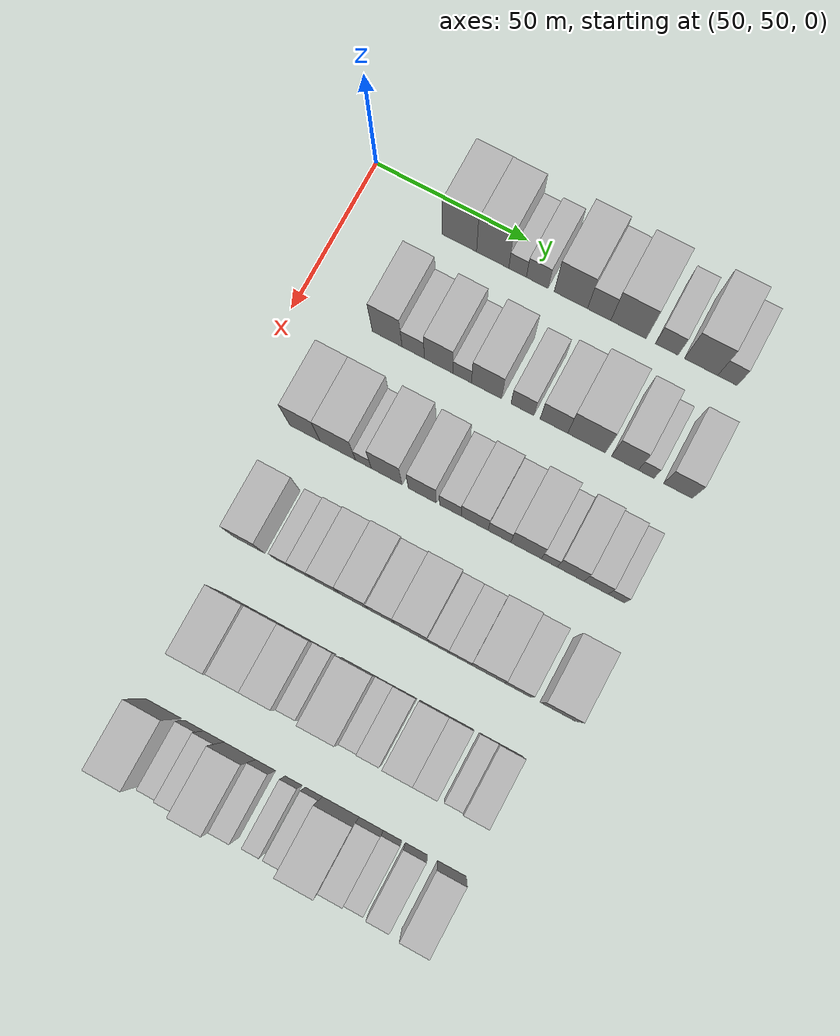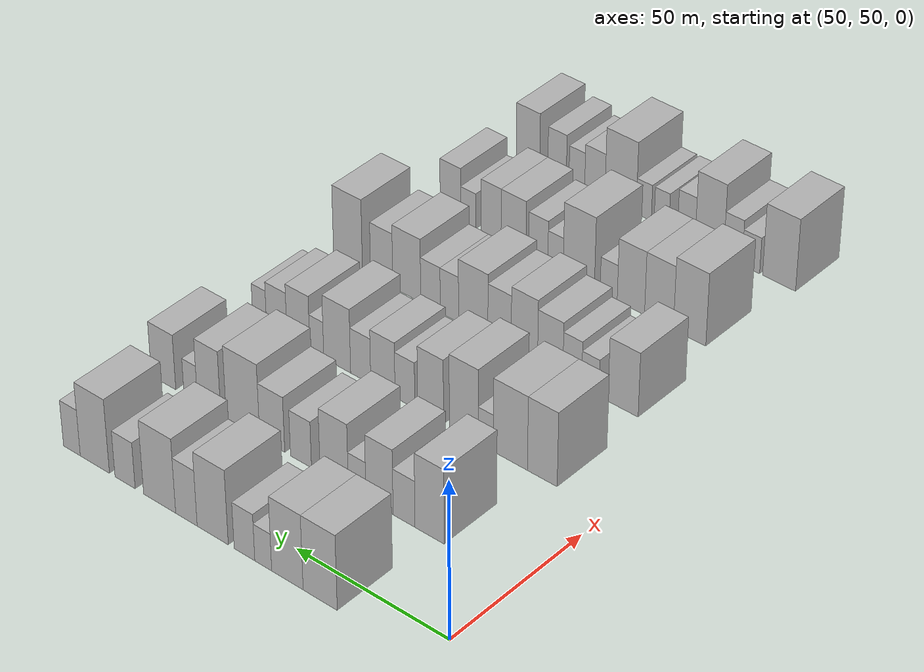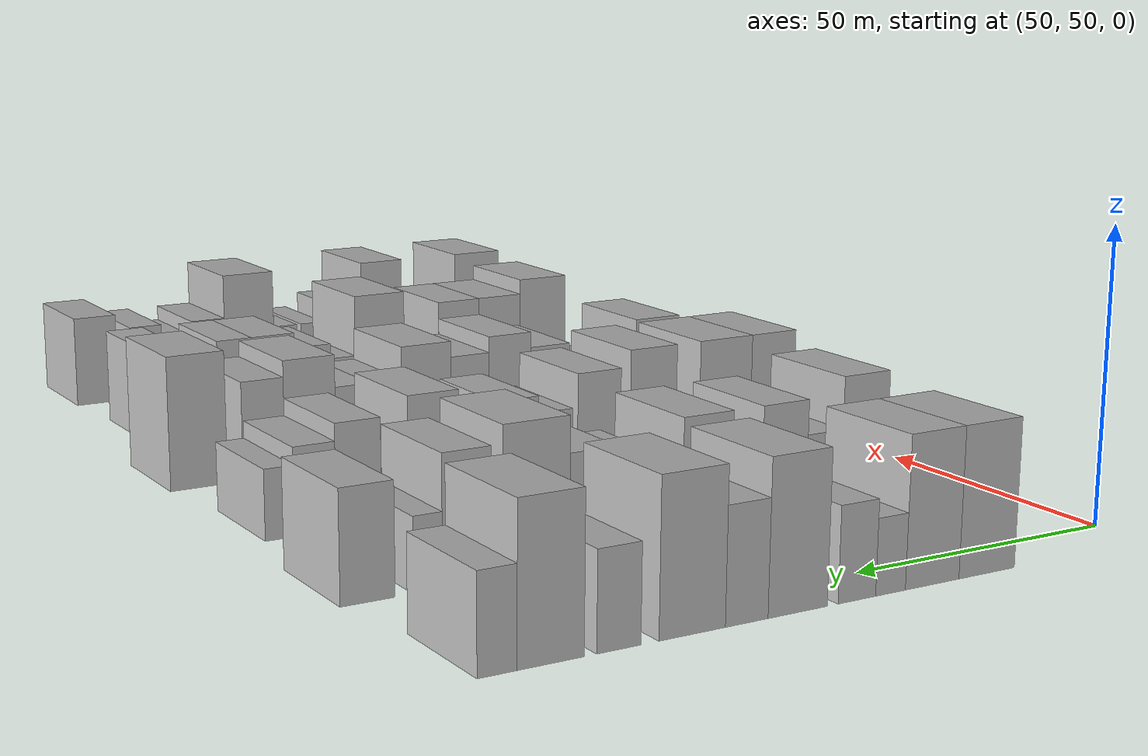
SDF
<sdf version="1.6">
 <world name="default">
  <model name="building_66">
   <static>1</static>
   <pose>50.0000 82.8861 0 0.000000 0.000000 0.000000</pose>
   <link name="link">
    <pose>0 0 12.00 0 0 0</pose>
    <collision name="collision"><geometry><box><size>20.0000 11.2311 24.0000</size></box></geometry></collision>
    <visual name="visual">
     <cast_shadows>0</cast_shadows>
     <geometry><box><size>20.0000 11.2311 24.0000</size></box></geometry>
     <material>
      <script>
       <uri>model://HANNAS_wall/materials/scripts</uri>
       <uri>model://HANNAS_wall/materials/textures</uri>
       <name>vrc/HANNAS_wall</name>
      </script>
     </material>
    </visual>
   </link>
  </model>
  <model name="building_67">
   <static>1</static>
   <pose>50.0000 93.7520 0 0.000000 0.000000 0.000000</pose>
   <link name="link">
    <pose>0 0 12.00 0 0 0</pose>
    <collision name="collision"><geometry><box><size>20.0000 10.5008 24.0000</size></box></geometry></collision>
    <visual name="visual">
     <cast_shadows>0</cast_shadows>
     <geometry><box><size>20.0000 10.5008 24.0000</size></box></geometry>
     <material>
      <script>
       <uri>model://HANNAS_wall/materials/scripts</uri>
       <uri>model://HANNAS_wall/materials/textures</uri>
       <name>vrc/HANNAS_wall</name>
      </script>
     </material>
    </visual>
   </link>
  </model>
  <model name="building_68">
   <static>1</static>
   <pose>50.0000 101.8500 0 0.000000 0.000000 0.000000</pose>
   <link name="link">
    <pose>0 0 6.00 0 0 0</pose>
    <collision name="collision"><geometry><box><size>20.0000 5.6951 12.0000</size></box></geometry></collision>
    <visual name="visual">
     <cast_shadows>0</cast_shadows>
     <geometry><box><size>20.0000 5.6951 12.0000</size></box></geometry>
     <material>
      <script>
       <uri>model://HANNAS_wall/materials/scripts</uri>
       <uri>model://HANNAS_wall/materials/textures</uri>
       <name>vrc/HANNAS_wall</name>
      </script>
     </material>
    </visual>
   </link>
  </model>
  <model name="building_69">
   <static>1</static>
   <pose>50.0000 108.2108 0 0.000000 0.000000 0.000000</pose>
   <link name="link">
    <pose>0 0 7.50 0 0 0</pose>
    <collision name="collision"><geometry><box><size>20.0000 7.0266 15.0000</size></box></geometry></collision>
    <visual name="visual">
     <cast_shadows>0</cast_shadows>
     <geometry><box><size>20.0000 7.0266 15.0000</size></box></geometry>
     <material>
      <script>
       <uri>model://HANNAS_wall/materials/scripts</uri>
       <uri>model://HANNAS_wall/materials/textures</uri>
       <name>vrc/HANNAS_wall</name>
      </script>
     </material>
    </visual>
   </link>
  </model>
  <model name="building_70">
   <static>1</static>
   <pose>50.0000 119.0838 0 0.000000 0.000000 0.000000</pose>
   <link name="link">
    <pose>0 0 12.00 0 0 0</pose>
    <collision name="collision"><geometry><box><size>20.0000 10.7194 24.0000</size></box></geometry></collision>
    <visual name="visual">
     <cast_shadows>0</cast_shadows>
     <geometry><box><size>20.0000 10.7194 24.0000</size></box></geometry>
     <material>
      <script>
       <uri>model://HANNAS_wall/materials/scripts</uri>
       <uri>model://HANNAS_wall/materials/textures</uri>
       <name>vrc/HANNAS_wall</name>
      </script>
     </material>
    </visual>
   </link>
  </model>
  <model name="building_71">
   <static>1</static>
   <pose>50.0000 128.1897 0 0.000000 0.000000 0.000000</pose>
   <link name="link">
    <pose>0 0 9.00 0 0 0</pose>
    <collision name="collision"><geometry><box><size>20.0000 7.4924 18.0000</size></box></geometry></collision>
    <visual name="visual">
     <cast_shadows>0</cast_shadows>
     <geometry><box><size>20.0000 7.4924 18.0000</size></box></geometry>
     <material>
      <script>
       <uri>model://HANNAS_wall/materials/scripts</uri>
       <uri>model://HANNAS_wall/materials/textures</uri>
       <name>vrc/HANNAS_wall</name>
      </script>
     </material>
    </visual>
   </link>
  </model>
  <model name="building_72">
   <static>1</static>
   <pose>50.0000 137.5863 0 0.000000 0.000000 0.000000</pose>
   <link name="link">
    <pose>0 0 12.00 0 0 0</pose>
    <collision name="collision"><geometry><box><size>20.0000 11.3008 24.0000</size></box></geometry></collision>
    <visual name="visual">
     <cast_shadows>0</cast_shadows>
     <geometry><box><size>20.0000 11.3008 24.0000</size></box></geometry>
     <material>
      <script>
       <uri>model://HANNAS_wall/materials/scripts</uri>
       <uri>model://HANNAS_wall/materials/textures</uri>
       <name>vrc/HANNAS_wall</name>
      </script>
     </material>
    </visual>
   </link>
  </model>
  <model name="building_73">
   <static>1</static>
   <pose>50.0000 149.8443 0 0.000000 0.000000 0.000000</pose>
   <link name="link">
    <pose>0 0 7.50 0 0 0</pose>
    <collision name="collision"><geometry><box><size>20.0000 7.2153 15.0000</size></box></geometry></collision>
    <visual name="visual">
     <cast_shadows>0</cast_shadows>
     <geometry><box><size>20.0000 7.2153 15.0000</size></box></geometry>
     <material>
      <script>
       <uri>model://HANNAS_wall/materials/scripts</uri>
       <uri>model://HANNAS_wall/materials/textures</uri>
       <name>vrc/HANNAS_wall</name>
      </script>
     </material>
    </visual>
   </link>
  </model>
  <model name="building_74">
   <static>1</static>
   <pose>50.0000 160.7330 0 0.000000 0.000000 0.000000</pose>
   <link name="link">
    <pose>0 0 12.00 0 0 0</pose>
    <collision name="collision"><geometry><box><size>20.0000 10.5620 24.0000</size></box></geometry></collision>
    <visual name="visual">
     <cast_shadows>0</cast_shadows>
     <geometry><box><size>20.0000 10.5620 24.0000</size></box></geometry>
     <material>
      <script>
       <uri>model://HANNAS_wall/materials/scripts</uri>
       <uri>model://HANNAS_wall/materials/textures</uri>
       <name>vrc/HANNAS_wall</name>
      </script>
     </material>
    </visual>
   </link>
  </model>
  <model name="building_75">
   <static>1</static>
   <pose>50.0000 169.0796 0 0.000000 0.000000 0.000000</pose>
   <link name="link">
    <pose>0 0 7.50 0 0 0</pose>
    <collision name="collision"><geometry><box><size>20.0000 6.1313 15.0000</size></box></geometry></collision>
    <visual name="visual">
     <cast_shadows>0</cast_shadows>
     <geometry><box><size>20.0000 6.1313 15.0000</size></box></geometry>
     <material>
      <script>
       <uri>model://HANNAS_wall/materials/scripts</uri>
       <uri>model://HANNAS_wall/materials/textures</uri>
       <name>vrc/HANNAS_wall</name>
      </script>
     </material>
    </visual>
   </link>
  </model>
  <model name="building_192">
   <static>1</static>
   <pose>85.0000 78.3470 0 0.000000 0.000000 0.000000</pose>
   <link name="link">
    <pose>0 0 12.00 0 0 0</pose>
    <collision name="collision"><geometry><box><size>20.0000 9.6122 24.0000</size></box></geometry></collision>
    <visual name="visual">
     <cast_shadows>0</cast_shadows>
     <geometry><box><size>20.0000 9.6122 24.0000</size></box></geometry>
     <material>
      <script>
       <uri>model://HANNAS_wall/materials/scripts</uri>
       <uri>model://HANNAS_wall/materials/textures</uri>
       <name>vrc/HANNAS_wall</name>
      </script>
     </material>
    </visual>
   </link>
  </model>
  <model name="building_193">
   <static>1</static>
   <pose>85.0000 86.7908 0 0.000000 0.000000 0.000000</pose>
   <link name="link">
    <pose>0 0 7.50 0 0 0</pose>
    <collision name="collision"><geometry><box><size>20.0000 7.2756 15.0000</size></box></geometry></collision>
    <visual name="visual">
     <cast_shadows>0</cast_shadows>
     <geometry><box><size>20.0000 7.2756 15.0000</size></box></geometry>
     <material>
      <script>
       <uri>model://HANNAS_wall/materials/scripts</uri>
       <uri>model://HANNAS_wall/materials/textures</uri>
       <name>vrc/HANNAS_wall</name>
      </script>
     </material>
    </visual>
   </link>
  </model>
  <model name="building_194">
   <static>1</static>
   <pose>85.0000 94.9888 0 0.000000 0.000000 0.000000</pose>
   <link name="link">
    <pose>0 0 10.50 0 0 0</pose>
    <collision name="collision"><geometry><box><size>20.0000 9.1202 21.0000</size></box></geometry></collision>
    <visual name="visual">
     <cast_shadows>0</cast_shadows>
     <geometry><box><size>20.0000 9.1202 21.0000</size></box></geometry>
     <material>
      <script>
       <uri>model://HANNAS_wall/materials/scripts</uri>
       <uri>model://HANNAS_wall/materials/textures</uri>
       <name>vrc/HANNAS_wall</name>
      </script>
     </material>
    </visual>
   </link>
  </model>
  <model name="building_195">
   <static>1</static>
   <pose>85.0000 102.5280 0 0.000000 0.000000 0.000000</pose>
   <link name="link">
    <pose>0 0 6.00 0 0 0</pose>
    <collision name="collision"><geometry><box><size>20.0000 5.9583 12.0000</size></box></geometry></collision>
    <visual name="visual">
     <cast_shadows>0</cast_shadows>
     <geometry><box><size>20.0000 5.9583 12.0000</size></box></geometry>
     <material>
      <script>
       <uri>model://HANNAS_wall/materials/scripts</uri>
       <uri>model://HANNAS_wall/materials/textures</uri>
       <name>vrc/HANNAS_wall</name>
      </script>
     </material>
    </visual>
   </link>
  </model>
  <model name="building_196">
   <static>1</static>
   <pose>85.0000 110.3411 0 0.000000 0.000000 0.000000</pose>
   <link name="link">
    <pose>0 0 10.50 0 0 0</pose>
    <collision name="collision"><geometry><box><size>20.0000 9.6679 21.0000</size></box></geometry></collision>
    <visual name="visual">
     <cast_shadows>0</cast_shadows>
     <geometry><box><size>20.0000 9.6679 21.0000</size></box></geometry>
     <material>
      <script>
       <uri>model://HANNAS_wall/materials/scripts</uri>
       <uri>model://HANNAS_wall/materials/textures</uri>
       <name>vrc/HANNAS_wall</name>
      </script>
     </material>
    </visual>
   </link>
  </model>
  <model name="building_197">
   <static>1</static>
   <pose>85.0000 121.8186 0 0.000000 0.000000 0.000000</pose>
   <link name="link">
    <pose>0 0 7.50 0 0 0</pose>
    <collision name="collision"><geometry><box><size>20.0000 7.2870 15.0000</size></box></geometry></collision>
    <visual name="visual">
     <cast_shadows>0</cast_shadows>
     <geometry><box><size>20.0000 7.2870 15.0000</size></box></geometry>
     <material>
      <script>
       <uri>model://HANNAS_wall/materials/scripts</uri>
       <uri>model://HANNAS_wall/materials/textures</uri>
       <name>vrc/HANNAS_wall</name>
      </script>
     </material>
    </visual>
   </link>
  </model>
  <model name="building_198">
   <static>1</static>
   <pose>85.0000 131.8565 0 0.000000 0.000000 0.000000</pose>
   <link name="link">
    <pose>0 0 9.00 0 0 0</pose>
    <collision name="collision"><geometry><box><size>20.0000 8.7888 18.0000</size></box></geometry></collision>
    <visual name="visual">
     <cast_shadows>0</cast_shadows>
     <geometry><box><size>20.0000 8.7888 18.0000</size></box></geometry>
     <material>
      <script>
       <uri>model://HANNAS_wall/materials/scripts</uri>
       <uri>model://HANNAS_wall/materials/textures</uri>
       <name>vrc/HANNAS_wall</name>
      </script>
     </material>
    </visual>
   </link>
  </model>
  <model name="building_199">
   <static>1</static>
   <pose>85.0000 142.1907 0 0.000000 0.000000 0.000000</pose>
   <link name="link">
    <pose>0 0 12.00 0 0 0</pose>
    <collision name="collision"><geometry><box><size>20.0000 11.8796 24.0000</size></box></geometry></collision>
    <visual name="visual">
     <cast_shadows>0</cast_shadows>
     <geometry><box><size>20.0000 11.8796 24.0000</size></box></geometry>
     <material>
      <script>
       <uri>model://HANNAS_wall/materials/scripts</uri>
       <uri>model://HANNAS_wall/materials/textures</uri>
       <name>vrc/HANNAS_wall</name>
      </script>
     </material>
    </visual>
   </link>
  </model>
  <model name="building_200">
   <static>1</static>
   <pose>85.0000 154.3341 0 0.000000 0.000000 0.000000</pose>
   <link name="link">
    <pose>0 0 10.50 0 0 0</pose>
    <collision name="collision"><geometry><box><size>20.0000 8.4072 21.0000</size></box></geometry></collision>
    <visual name="visual">
     <cast_shadows>0</cast_shadows>
     <geometry><box><size>20.0000 8.4072 21.0000</size></box></geometry>
     <material>
      <script>
       <uri>model://HANNAS_wall/materials/scripts</uri>
       <uri>model://HANNAS_wall/materials/textures</uri>
       <name>vrc/HANNAS_wall</name>
      </script>
     </material>
    </visual>
   </link>
  </model>
  <model name="building_201">
   <static>1</static>
   <pose>85.0000 160.9984 0 0.000000 0.000000 0.000000</pose>
   <link name="link">
    <pose>0 0 6.00 0 0 0</pose>
    <collision name="collision"><geometry><box><size>20.0000 4.9215 12.0000</size></box></geometry></collision>
    <visual name="visual">
     <cast_shadows>0</cast_shadows>
     <geometry><box><size>20.0000 4.9215 12.0000</size></box></geometry>
     <material>
      <script>
       <uri>model://HANNAS_wall/materials/scripts</uri>
       <uri>model://HANNAS_wall/materials/textures</uri>
       <name>vrc/HANNAS_wall</name>
      </script>
     </material>
    </visual>
   </link>
  </model>
  <model name="building_202">
   <static>1</static>
   <pose>85.0000 170.9503 0 0.000000 0.000000 0.000000</pose>
   <link name="link">
    <pose>0 0 9.00 0 0 0</pose>
    <collision name="collision"><geometry><box><size>20.0000 8.9822 18.0000</size></box></geometry></collision>
    <visual name="visual">
     <cast_shadows>0</cast_shadows>
     <geometry><box><size>20.0000 8.9822 18.0000</size></box></geometry>
     <material>
      <script>
       <uri>model://HANNAS_wall/materials/scripts</uri>
       <uri>model://HANNAS_wall/materials/textures</uri>
       <name>vrc/HANNAS_wall</name>
      </script>
     </material>
    </visual>
   </link>
  </model>
  <model name="building_320">
   <static>1</static>
   <pose>120.0000 71.1580 0 0.000000 0.000000 0.000000</pose>
   <link name="link">
    <pose>0 0 12.00 0 0 0</pose>
    <collision name="collision"><geometry><box><size>20.0000 9.8005 24.0000</size></box></geometry></collision>
    <visual name="visual">
     <cast_shadows>0</cast_shadows>
     <geometry><box><size>20.0000 9.8005 24.0000</size></box></geometry>
     <material>
      <script>
       <uri>model://HANNAS_wall/materials/scripts</uri>
       <uri>model://HANNAS_wall/materials/textures</uri>
       <name>vrc/HANNAS_wall</name>
      </script>
     </material>
    </visual>
   </link>
  </model>
  <model name="building_321">
   <static>1</static>
   <pose>120.0000 81.7334 0 0.000000 0.000000 0.000000</pose>
   <link name="link">
    <pose>0 0 12.00 0 0 0</pose>
    <collision name="collision"><geometry><box><size>20.0000 11.3503 24.0000</size></box></geometry></collision>
    <visual name="visual">
     <cast_shadows>0</cast_shadows>
     <geometry><box><size>20.0000 11.3503 24.0000</size></box></geometry>
     <material>
      <script>
       <uri>model://HANNAS_wall/materials/scripts</uri>
       <uri>model://HANNAS_wall/materials/textures</uri>
       <name>vrc/HANNAS_wall</name>
      </script>
     </material>
    </visual>
   </link>
  </model>
  <model name="building_322">
   <static>1</static>
   <pose>120.0000 89.9435 0 0.000000 0.000000 0.000000</pose>
   <link name="link">
    <pose>0 0 6.00 0 0 0</pose>
    <collision name="collision"><geometry><box><size>20.0000 5.0697 12.0000</size></box></geometry></collision>
    <visual name="visual">
     <cast_shadows>0</cast_shadows>
     <geometry><box><size>20.0000 5.0697 12.0000</size></box></geometry>
     <material>
      <script>
       <uri>model://HANNAS_wall/materials/scripts</uri>
       <uri>model://HANNAS_wall/materials/textures</uri>
       <name>vrc/HANNAS_wall</name>
      </script>
     </material>
    </visual>
   </link>
  </model>
  <model name="building_323">
   <static>1</static>
   <pose>120.0000 97.3621 0 0.000000 0.000000 0.000000</pose>
   <link name="link">
    <pose>0 0 12.00 0 0 0</pose>
    <collision name="collision"><geometry><box><size>20.0000 9.7675 24.0000</size></box></geometry></collision>
    <visual name="visual">
     <cast_shadows>0</cast_shadows>
     <geometry><box><size>20.0000 9.7675 24.0000</size></box></geometry>
     <material>
      <script>
       <uri>model://HANNAS_wall/materials/scripts</uri>
       <uri>model://HANNAS_wall/materials/textures</uri>
       <name>vrc/HANNAS_wall</name>
      </script>
     </material>
    </visual>
   </link>
  </model>
  <model name="building_324">
   <static>1</static>
   <pose>120.0000 108.6816 0 0.000000 0.000000 0.000000</pose>
   <link name="link">
    <pose>0 0 10.50 0 0 0</pose>
    <collision name="collision"><geometry><box><size>20.0000 8.8715 21.0000</size></box></geometry></collision>
    <visual name="visual">
     <cast_shadows>0</cast_shadows>
     <geometry><box><size>20.0000 8.8715 21.0000</size></box></geometry>
     <material>
      <script>
       <uri>model://HANNAS_wall/materials/scripts</uri>
       <uri>model://HANNAS_wall/materials/textures</uri>
       <name>vrc/HANNAS_wall</name>
      </script>
     </material>
    </visual>
   </link>
  </model>
  <model name="building_325">
   <static>1</static>
   <pose>120.0000 117.5374 0 0.000000 0.000000 0.000000</pose>
   <link name="link">
    <pose>0 0 7.50 0 0 0</pose>
    <collision name="collision"><geometry><box><size>20.0000 6.8402 15.0000</size></box></geometry></collision>
    <visual name="visual">
     <cast_shadows>0</cast_shadows>
     <geometry><box><size>20.0000 6.8402 15.0000</size></box></geometry>
     <material>
      <script>
       <uri>model://HANNAS_wall/materials/scripts</uri>
       <uri>model://HANNAS_wall/materials/textures</uri>
       <name>vrc/HANNAS_wall</name>
      </script>
     </material>
    </visual>
   </link>
  </model>
  <model name="building_326">
   <static>1</static>
   <pose>120.0000 125.2174 0 0.000000 0.000000 0.000000</pose>
   <link name="link">
    <pose>0 0 9.00 0 0 0</pose>
    <collision name="collision"><geometry><box><size>20.0000 8.5199 18.0000</size></box></geometry></collision>
    <visual name="visual">
     <cast_shadows>0</cast_shadows>
     <geometry><box><size>20.0000 8.5199 18.0000</size></box></geometry>
     <material>
      <script>
       <uri>model://HANNAS_wall/materials/scripts</uri>
       <uri>model://HANNAS_wall/materials/textures</uri>
       <name>vrc/HANNAS_wall</name>
      </script>
     </material>
    </visual>
   </link>
  </model>
  <model name="building_327">
   <static>1</static>
   <pose>120.0000 133.0265 0 0.000000 0.000000 0.000000</pose>
   <link name="link">
    <pose>0 0 7.50 0 0 0</pose>
    <collision name="collision"><geometry><box><size>20.0000 7.0983 15.0000</size></box></geometry></collision>
    <visual name="visual">
     <cast_shadows>0</cast_shadows>
     <geometry><box><size>20.0000 7.0983 15.0000</size></box></geometry>
     <material>
      <script>
       <uri>model://HANNAS_wall/materials/scripts</uri>
       <uri>model://HANNAS_wall/materials/textures</uri>
       <name>vrc/HANNAS_wall</name>
      </script>
     </material>
    </visual>
   </link>
  </model>
  <model name="building_328">
   <static>1</static>
   <pose>120.0000 141.3743 0 0.000000 0.000000 0.000000</pose>
   <link name="link">
    <pose>0 0 10.50 0 0 0</pose>
    <collision name="collision"><geometry><box><size>20.0000 9.5973 21.0000</size></box></geometry></collision>
    <visual name="visual">
     <cast_shadows>0</cast_shadows>
     <geometry><box><size>20.0000 9.5973 21.0000</size></box></geometry>
     <material>
      <script>
       <uri>model://HANNAS_wall/materials/scripts</uri>
       <uri>model://HANNAS_wall/materials/textures</uri>
       <name>vrc/HANNAS_wall</name>
      </script>
     </material>
    </visual>
   </link>
  </model>
  <model name="building_329">
   <static>1</static>
   <pose>120.0000 148.6770 0 0.000000 0.000000 0.000000</pose>
   <link name="link">
    <pose>0 0 6.00 0 0 0</pose>
    <collision name="collision"><geometry><box><size>20.0000 5.0082 12.0000</size></box></geometry></collision>
    <visual name="visual">
     <cast_shadows>0</cast_shadows>
     <geometry><box><size>20.0000 5.0082 12.0000</size></box></geometry>
     <material>
      <script>
       <uri>model://HANNAS_wall/materials/scripts</uri>
       <uri>model://HANNAS_wall/materials/textures</uri>
       <name>vrc/HANNAS_wall</name>
      </script>
     </material>
    </visual>
   </link>
  </model>
  <model name="building_330">
   <static>1</static>
   <pose>120.0000 155.3260 0 0.000000 0.000000 0.000000</pose>
   <link name="link">
    <pose>0 0 9.00 0 0 0</pose>
    <collision name="collision"><geometry><box><size>20.0000 8.2897 18.0000</size></box></geometry></collision>
    <visual name="visual">
     <cast_shadows>0</cast_shadows>
     <geometry><box><size>20.0000 8.2897 18.0000</size></box></geometry>
     <material>
      <script>
       <uri>model://HANNAS_wall/materials/scripts</uri>
       <uri>model://HANNAS_wall/materials/textures</uri>
       <name>vrc/HANNAS_wall</name>
      </script>
     </material>
    </visual>
   </link>
  </model>
  <model name="building_331">
   <static>1</static>
   <pose>120.0000 163.2194 0 0.000000 0.000000 0.000000</pose>
   <link name="link">
    <pose>0 0 7.50 0 0 0</pose>
    <collision name="collision"><geometry><box><size>20.0000 7.4971 15.0000</size></box></geometry></collision>
    <visual name="visual">
     <cast_shadows>0</cast_shadows>
     <geometry><box><size>20.0000 7.4971 15.0000</size></box></geometry>
     <material>
      <script>
       <uri>model://HANNAS_wall/materials/scripts</uri>
       <uri>model://HANNAS_wall/materials/textures</uri>
       <name>vrc/HANNAS_wall</name>
      </script>
     </material>
    </visual>
   </link>
  </model>
  <model name="building_332">
   <static>1</static>
   <pose>120.0000 169.5072 0 0.000000 0.000000 0.000000</pose>
   <link name="link">
    <pose>0 0 6.00 0 0 0</pose>
    <collision name="collision"><geometry><box><size>20.0000 5.0786 12.0000</size></box></geometry></collision>
    <visual name="visual">
     <cast_shadows>0</cast_shadows>
     <geometry><box><size>20.0000 5.0786 12.0000</size></box></geometry>
     <material>
      <script>
       <uri>model://HANNAS_wall/materials/scripts</uri>
       <uri>model://HANNAS_wall/materials/textures</uri>
       <name>vrc/HANNAS_wall</name>
      </script>
     </material>
    </visual>
   </link>
  </model>
  <model name="building_441">
   <static>1</static>
   <pose>155.0000 72.9987 0 0.000000 0.000000 0.000000</pose>
   <link name="link">
    <pose>0 0 10.50 0 0 0</pose>
    <collision name="collision"><geometry><box><size>20.0000 9.9879 21.0000</size></box></geometry></collision>
    <visual name="visual">
     <cast_shadows>0</cast_shadows>
     <geometry><box><size>20.0000 9.9879 21.0000</size></box></geometry>
     <material>
      <script>
       <uri>model://HANNAS_wall/materials/scripts</uri>
       <uri>model://HANNAS_wall/materials/textures</uri>
       <name>vrc/HANNAS_wall</name>
      </script>
     </material>
    </visual>
   </link>
  </model>
  <model name="building_442">
   <static>1</static>
   <pose>155.0000 83.9254 0 0.000000 0.000000 0.000000</pose>
   <link name="link">
    <pose>0 0 6.00 0 0 0</pose>
    <collision name="collision"><geometry><box><size>20.0000 5.8654 12.0000</size></box></geometry></collision>
    <visual name="visual">
     <cast_shadows>0</cast_shadows>
     <geometry><box><size>20.0000 5.8654 12.0000</size></box></geometry>
     <material>
      <script>
       <uri>model://HANNAS_wall/materials/scripts</uri>
       <uri>model://HANNAS_wall/materials/textures</uri>
       <name>vrc/HANNAS_wall</name>
      </script>
     </material>
    </visual>
   </link>
  </model>
  <model name="building_443">
   <static>1</static>
   <pose>155.0000 90.0414 0 0.000000 0.000000 0.000000</pose>
   <link name="link">
    <pose>0 0 7.50 0 0 0</pose>
    <collision name="collision"><geometry><box><size>20.0000 6.3666 15.0000</size></box></geometry></collision>
    <visual name="visual">
     <cast_shadows>0</cast_shadows>
     <geometry><box><size>20.0000 6.3666 15.0000</size></box></geometry>
     <material>
      <script>
       <uri>model://HANNAS_wall/materials/scripts</uri>
       <uri>model://HANNAS_wall/materials/textures</uri>
       <name>vrc/HANNAS_wall</name>
      </script>
     </material>
    </visual>
   </link>
  </model>
  <model name="building_444">
   <static>1</static>
   <pose>155.0000 97.5433 0 0.000000 0.000000 0.000000</pose>
   <link name="link">
    <pose>0 0 9.00 0 0 0</pose>
    <collision name="collision"><geometry><box><size>20.0000 8.6372 18.0000</size></box></geometry></collision>
    <visual name="visual">
     <cast_shadows>0</cast_shadows>
     <geometry><box><size>20.0000 8.6372 18.0000</size></box></geometry>
     <material>
      <script>
       <uri>model://HANNAS_wall/materials/scripts</uri>
       <uri>model://HANNAS_wall/materials/textures</uri>
       <name>vrc/HANNAS_wall</name>
      </script>
     </material>
    </visual>
   </link>
  </model>
  <model name="building_445">
   <static>1</static>
   <pose>155.0000 106.4123 0 0.000000 0.000000 0.000000</pose>
   <link name="link">
    <pose>0 0 10.50 0 0 0</pose>
    <collision name="collision"><geometry><box><size>20.0000 9.1010 21.0000</size></box></geometry></collision>
    <visual name="visual">
     <cast_shadows>0</cast_shadows>
     <geometry><box><size>20.0000 9.1010 21.0000</size></box></geometry>
     <material>
      <script>
       <uri>model://HANNAS_wall/materials/scripts</uri>
       <uri>model://HANNAS_wall/materials/textures</uri>
       <name>vrc/HANNAS_wall</name>
      </script>
     </material>
    </visual>
   </link>
  </model>
  <model name="building_446">
   <static>1</static>
   <pose>155.0000 115.0220 0 0.000000 0.000000 0.000000</pose>
   <link name="link">
    <pose>0 0 9.00 0 0 0</pose>
    <collision name="collision"><geometry><box><size>20.0000 8.1183 18.0000</size></box></geometry></collision>
    <visual name="visual">
     <cast_shadows>0</cast_shadows>
     <geometry><box><size>20.0000 8.1183 18.0000</size></box></geometry>
     <material>
      <script>
       <uri>model://HANNAS_wall/materials/scripts</uri>
       <uri>model://HANNAS_wall/materials/textures</uri>
       <name>vrc/HANNAS_wall</name>
      </script>
     </material>
    </visual>
   </link>
  </model>
  <model name="building_447">
   <static>1</static>
   <pose>155.0000 124.2455 0 0.000000 0.000000 0.000000</pose>
   <link name="link">
    <pose>0 0 10.50 0 0 0</pose>
    <collision name="collision"><geometry><box><size>20.0000 10.3288 21.0000</size></box></geometry></collision>
    <visual name="visual">
     <cast_shadows>0</cast_shadows>
     <geometry><box><size>20.0000 10.3288 21.0000</size></box></geometry>
     <material>
      <script>
       <uri>model://HANNAS_wall/materials/scripts</uri>
       <uri>model://HANNAS_wall/materials/textures</uri>
       <name>vrc/HANNAS_wall</name>
      </script>
     </material>
    </visual>
   </link>
  </model>
  <model name="building_448">
   <static>1</static>
   <pose>155.0000 132.6566 0 0.000000 0.000000 0.000000</pose>
   <link name="link">
    <pose>0 0 7.50 0 0 0</pose>
    <collision name="collision"><geometry><box><size>20.0000 6.4934 15.0000</size></box></geometry></collision>
    <visual name="visual">
     <cast_shadows>0</cast_shadows>
     <geometry><box><size>20.0000 6.4934 15.0000</size></box></geometry>
     <material>
      <script>
       <uri>model://HANNAS_wall/materials/scripts</uri>
       <uri>model://HANNAS_wall/materials/textures</uri>
       <name>vrc/HANNAS_wall</name>
      </script>
     </material>
    </visual>
   </link>
  </model>
  <model name="building_449">
   <static>1</static>
   <pose>155.0000 139.3951 0 0.000000 0.000000 0.000000</pose>
   <link name="link">
    <pose>0 0 7.50 0 0 0</pose>
    <collision name="collision"><geometry><box><size>20.0000 6.9836 15.0000</size></box></geometry></collision>
    <visual name="visual">
     <cast_shadows>0</cast_shadows>
     <geometry><box><size>20.0000 6.9836 15.0000</size></box></geometry>
     <material>
      <script>
       <uri>model://HANNAS_wall/materials/scripts</uri>
       <uri>model://HANNAS_wall/materials/textures</uri>
       <name>vrc/HANNAS_wall</name>
      </script>
     </material>
    </visual>
   </link>
  </model>
  <model name="building_450">
   <static>1</static>
   <pose>155.0000 147.9284 0 0.000000 0.000000 0.000000</pose>
   <link name="link">
    <pose>0 0 10.50 0 0 0</pose>
    <collision name="collision"><geometry><box><size>20.0000 10.0830 21.0000</size></box></geometry></collision>
    <visual name="visual">
     <cast_shadows>0</cast_shadows>
     <geometry><box><size>20.0000 10.0830 21.0000</size></box></geometry>
     <material>
      <script>
       <uri>model://HANNAS_wall/materials/scripts</uri>
       <uri>model://HANNAS_wall/materials/textures</uri>
       <name>vrc/HANNAS_wall</name>
      </script>
     </material>
    </visual>
   </link>
  </model>
  <model name="building_451">
   <static>1</static>
   <pose>155.0000 157.0211 0 0.000000 0.000000 0.000000</pose>
   <link name="link">
    <pose>0 0 9.00 0 0 0</pose>
    <collision name="collision"><geometry><box><size>20.0000 8.1024 18.0000</size></box></geometry></collision>
    <visual name="visual">
     <cast_shadows>0</cast_shadows>
     <geometry><box><size>20.0000 8.1024 18.0000</size></box></geometry>
     <material>
      <script>
       <uri>model://HANNAS_wall/materials/scripts</uri>
       <uri>model://HANNAS_wall/materials/textures</uri>
       <name>vrc/HANNAS_wall</name>
      </script>
     </material>
    </visual>
   </link>
  </model>
  <model name="building_452">
   <static>1</static>
   <pose>155.0000 169.3982 0 0.000000 0.000000 0.000000</pose>
   <link name="link">
    <pose>0 0 12.00 0 0 0</pose>
    <collision name="collision"><geometry><box><size>20.0000 10.6517 24.0000</size></box></geometry></collision>
    <visual name="visual">
     <cast_shadows>0</cast_shadows>
     <geometry><box><size>20.0000 10.6517 24.0000</size></box></geometry>
     <material>
      <script>
       <uri>model://HANNAS_wall/materials/scripts</uri>
       <uri>model://HANNAS_wall/materials/textures</uri>
       <name>vrc/HANNAS_wall</name>
      </script>
     </material>
    </visual>
   </link>
  </model>
  <model name="building_572">
   <static>1</static>
   <pose>190.0000 78.3213 0 0.000000 0.000000 0.000000</pose>
   <link name="link">
    <pose>0 0 12.00 0 0 0</pose>
    <collision name="collision"><geometry><box><size>20.0000 10.9064 24.0000</size></box></geometry></collision>
    <visual name="visual">
     <cast_shadows>0</cast_shadows>
     <geometry><box><size>20.0000 10.9064 24.0000</size></box></geometry>
     <material>
      <script>
       <uri>model://HANNAS_wall/materials/scripts</uri>
       <uri>model://HANNAS_wall/materials/textures</uri>
       <name>vrc/HANNAS_wall</name>
      </script>
     </material>
    </visual>
   </link>
  </model>
  <model name="building_573">
   <static>1</static>
   <pose>190.0000 88.6854 0 0.000000 0.000000 0.000000</pose>
   <link name="link">
    <pose>0 0 10.50 0 0 0</pose>
    <collision name="collision"><geometry><box><size>20.0000 9.8218 21.0000</size></box></geometry></collision>
    <visual name="visual">
     <cast_shadows>0</cast_shadows>
     <geometry><box><size>20.0000 9.8218 21.0000</size></box></geometry>
     <material>
      <script>
       <uri>model://HANNAS_wall/materials/scripts</uri>
       <uri>model://HANNAS_wall/materials/textures</uri>
       <name>vrc/HANNAS_wall</name>
      </script>
     </material>
    </visual>
   </link>
  </model>
  <model name="building_574">
   <static>1</static>
   <pose>190.0000 98.2997 0 0.000000 0.000000 0.000000</pose>
   <link name="link">
    <pose>0 0 10.50 0 0 0</pose>
    <collision name="collision"><geometry><box><size>20.0000 9.4067 21.0000</size></box></geometry></collision>
    <visual name="visual">
     <cast_shadows>0</cast_shadows>
     <geometry><box><size>20.0000 9.4067 21.0000</size></box></geometry>
     <material>
      <script>
       <uri>model://HANNAS_wall/materials/scripts</uri>
       <uri>model://HANNAS_wall/materials/textures</uri>
       <name>vrc/HANNAS_wall</name>
      </script>
     </material>
    </visual>
   </link>
  </model>
  <model name="building_575">
   <static>1</static>
   <pose>190.0000 105.9650 0 0.000000 0.000000 0.000000</pose>
   <link name="link">
    <pose>0 0 6.00 0 0 0</pose>
    <collision name="collision"><geometry><box><size>20.0000 5.9239 12.0000</size></box></geometry></collision>
    <visual name="visual">
     <cast_shadows>0</cast_shadows>
     <geometry><box><size>20.0000 5.9239 12.0000</size></box></geometry>
     <material>
      <script>
       <uri>model://HANNAS_wall/materials/scripts</uri>
       <uri>model://HANNAS_wall/materials/textures</uri>
       <name>vrc/HANNAS_wall</name>
      </script>
     </material>
    </visual>
   </link>
  </model>
  <model name="building_576">
   <static>1</static>
   <pose>190.0000 116.4180 0 0.000000 0.000000 0.000000</pose>
   <link name="link">
    <pose>0 0 12.00 0 0 0</pose>
    <collision name="collision"><geometry><box><size>20.0000 10.9820 24.0000</size></box></geometry></collision>
    <visual name="visual">
     <cast_shadows>0</cast_shadows>
     <geometry><box><size>20.0000 10.9820 24.0000</size></box></geometry>
     <material>
      <script>
       <uri>model://HANNAS_wall/materials/scripts</uri>
       <uri>model://HANNAS_wall/materials/textures</uri>
       <name>vrc/HANNAS_wall</name>
      </script>
     </material>
    </visual>
   </link>
  </model>
  <model name="building_577">
   <static>1</static>
   <pose>190.0000 124.6281 0 0.000000 0.000000 0.000000</pose>
   <link name="link">
    <pose>0 0 6.00 0 0 0</pose>
    <collision name="collision"><geometry><box><size>20.0000 5.4383 12.0000</size></box></geometry></collision>
    <visual name="visual">
     <cast_shadows>0</cast_shadows>
     <geometry><box><size>20.0000 5.4383 12.0000</size></box></geometry>
     <material>
      <script>
       <uri>model://HANNAS_wall/materials/scripts</uri>
       <uri>model://HANNAS_wall/materials/textures</uri>
       <name>vrc/HANNAS_wall</name>
      </script>
     </material>
    </visual>
   </link>
  </model>
  <model name="building_578">
   <static>1</static>
   <pose>190.0000 130.7560 0 0.000000 0.000000 0.000000</pose>
   <link name="link">
    <pose>0 0 7.50 0 0 0</pose>
    <collision name="collision"><geometry><box><size>20.0000 6.8175 15.0000</size></box></geometry></collision>
    <visual name="visual">
     <cast_shadows>0</cast_shadows>
     <geometry><box><size>20.0000 6.8175 15.0000</size></box></geometry>
     <material>
      <script>
       <uri>model://HANNAS_wall/materials/scripts</uri>
       <uri>model://HANNAS_wall/materials/textures</uri>
       <name>vrc/HANNAS_wall</name>
      </script>
     </material>
    </visual>
   </link>
  </model>
  <model name="building_579">
   <static>1</static>
   <pose>190.0000 139.6504 0 0.000000 0.000000 0.000000</pose>
   <link name="link">
    <pose>0 0 9.00 0 0 0</pose>
    <collision name="collision"><geometry><box><size>20.0000 8.9713 18.0000</size></box></geometry></collision>
    <visual name="visual">
     <cast_shadows>0</cast_shadows>
     <geometry><box><size>20.0000 8.9713 18.0000</size></box></geometry>
     <material>
      <script>
       <uri>model://HANNAS_wall/materials/scripts</uri>
       <uri>model://HANNAS_wall/materials/textures</uri>
       <name>vrc/HANNAS_wall</name>
      </script>
     </material>
    </visual>
   </link>
  </model>
  <model name="building_580">
   <static>1</static>
   <pose>190.0000 147.7383 0 0.000000 0.000000 0.000000</pose>
   <link name="link">
    <pose>0 0 9.00 0 0 0</pose>
    <collision name="collision"><geometry><box><size>20.0000 7.2046 18.0000</size></box></geometry></collision>
    <visual name="visual">
     <cast_shadows>0</cast_shadows>
     <geometry><box><size>20.0000 7.2046 18.0000</size></box></geometry>
     <material>
      <script>
       <uri>model://HANNAS_wall/materials/scripts</uri>
       <uri>model://HANNAS_wall/materials/textures</uri>
       <name>vrc/HANNAS_wall</name>
      </script>
     </material>
    </visual>
   </link>
  </model>
  <model name="building_581">
   <static>1</static>
   <pose>190.0000 156.1290 0 0.000000 0.000000 0.000000</pose>
   <link name="link">
    <pose>0 0 6.00 0 0 0</pose>
    <collision name="collision"><geometry><box><size>20.0000 5.5768 12.0000</size></box></geometry></collision>
    <visual name="visual">
     <cast_shadows>0</cast_shadows>
     <geometry><box><size>20.0000 5.5768 12.0000</size></box></geometry>
     <material>
      <script>
       <uri>model://HANNAS_wall/materials/scripts</uri>
       <uri>model://HANNAS_wall/materials/textures</uri>
       <name>vrc/HANNAS_wall</name>
      </script>
     </material>
    </visual>
   </link>
  </model>
  <model name="building_582">
   <static>1</static>
   <pose>190.0000 162.6758 0 0.000000 0.000000 0.000000</pose>
   <link name="link">
    <pose>0 0 9.00 0 0 0</pose>
    <collision name="collision"><geometry><box><size>20.0000 7.5168 18.0000</size></box></geometry></collision>
    <visual name="visual">
     <cast_shadows>0</cast_shadows>
     <geometry><box><size>20.0000 7.5168 18.0000</size></box></geometry>
     <material>
      <script>
       <uri>model://HANNAS_wall/materials/scripts</uri>
       <uri>model://HANNAS_wall/materials/textures</uri>
       <name>vrc/HANNAS_wall</name>
      </script>
     </material>
    </visual>
   </link>
  </model>
  <model name="building_702">
   <static>1</static>
   <pose>225.0000 74.6856 0 0.000000 0.000000 0.000000</pose>
   <link name="link">
    <pose>0 0 12.00 0 0 0</pose>
    <collision name="collision"><geometry><box><size>20.0000 11.1570 24.0000</size></box></geometry></collision>
    <visual name="visual">
     <cast_shadows>0</cast_shadows>
     <geometry><box><size>20.0000 11.1570 24.0000</size></box></geometry>
     <material>
      <script>
       <uri>model://HANNAS_wall/materials/scripts</uri>
       <uri>model://HANNAS_wall/materials/textures</uri>
       <name>vrc/HANNAS_wall</name>
      </script>
     </material>
    </visual>
   </link>
  </model>
  <model name="building_703">
   <static>1</static>
   <pose>225.0000 84.2598 0 0.000000 0.000000 0.000000</pose>
   <link name="link">
    <pose>0 0 6.00 0 0 0</pose>
    <collision name="collision"><geometry><box><size>20.0000 5.9914 12.0000</size></box></geometry></collision>
    <visual name="visual">
     <cast_shadows>0</cast_shadows>
     <geometry><box><size>20.0000 5.9914 12.0000</size></box></geometry>
     <material>
      <script>
       <uri>model://HANNAS_wall/materials/scripts</uri>
       <uri>model://HANNAS_wall/materials/textures</uri>
       <name>vrc/HANNAS_wall</name>
      </script>
     </material>
    </visual>
   </link>
  </model>
  <model name="building_704">
   <static>1</static>
   <pose>225.0000 90.4231 0 0.000000 0.000000 0.000000</pose>
   <link name="link">
    <pose>0 0 7.50 0 0 0</pose>
    <collision name="collision"><geometry><box><size>20.0000 6.3352 15.0000</size></box></geometry></collision>
    <visual name="visual">
     <cast_shadows>0</cast_shadows>
     <geometry><box><size>20.0000 6.3352 15.0000</size></box></geometry>
     <material>
      <script>
       <uri>model://HANNAS_wall/materials/scripts</uri>
       <uri>model://HANNAS_wall/materials/textures</uri>
       <name>vrc/HANNAS_wall</name>
      </script>
     </material>
    </visual>
   </link>
  </model>
  <model name="building_705">
   <static>1</static>
   <pose>225.0000 98.5329 0 0.000000 0.000000 0.000000</pose>
   <link name="link">
    <pose>0 0 12.00 0 0 0</pose>
    <collision name="collision"><geometry><box><size>20.0000 9.8845 24.0000</size></box></geometry></collision>
    <visual name="visual">
     <cast_shadows>0</cast_shadows>
     <geometry><box><size>20.0000 9.8845 24.0000</size></box></geometry>
     <material>
      <script>
       <uri>model://HANNAS_wall/materials/scripts</uri>
       <uri>model://HANNAS_wall/materials/textures</uri>
       <name>vrc/HANNAS_wall</name>
      </script>
     </material>
    </visual>
   </link>
  </model>
  <model name="building_706">
   <static>1</static>
   <pose>225.0000 106.5747 0 0.000000 0.000000 0.000000</pose>
   <link name="link">
    <pose>0 0 7.50 0 0 0</pose>
    <collision name="collision"><geometry><box><size>20.0000 6.1989 15.0000</size></box></geometry></collision>
    <visual name="visual">
     <cast_shadows>0</cast_shadows>
     <geometry><box><size>20.0000 6.1989 15.0000</size></box></geometry>
     <material>
      <script>
       <uri>model://HANNAS_wall/materials/scripts</uri>
       <uri>model://HANNAS_wall/materials/textures</uri>
       <name>vrc/HANNAS_wall</name>
      </script>
     </material>
    </visual>
   </link>
  </model>
  <model name="building_707">
   <static>1</static>
   <pose>225.0000 115.2795 0 0.000000 0.000000 0.000000</pose>
   <link name="link">
    <pose>0 0 6.00 0 0 0</pose>
    <collision name="collision"><geometry><box><size>20.0000 5.2108 12.0000</size></box></geometry></collision>
    <visual name="visual">
     <cast_shadows>0</cast_shadows>
     <geometry><box><size>20.0000 5.2108 12.0000</size></box></geometry>
     <material>
      <script>
       <uri>model://HANNAS_wall/materials/scripts</uri>
       <uri>model://HANNAS_wall/materials/textures</uri>
       <name>vrc/HANNAS_wall</name>
      </script>
     </material>
    </visual>
   </link>
  </model>
  <model name="building_708">
   <static>1</static>
   <pose>225.0000 121.5792 0 0.000000 0.000000 0.000000</pose>
   <link name="link">
    <pose>0 0 6.00 0 0 0</pose>
    <collision name="collision"><geometry><box><size>20.0000 5.3885 12.0000</size></box></geometry></collision>
    <visual name="visual">
     <cast_shadows>0</cast_shadows>
     <geometry><box><size>20.0000 5.3885 12.0000</size></box></geometry>
     <material>
      <script>
       <uri>model://HANNAS_wall/materials/scripts</uri>
       <uri>model://HANNAS_wall/materials/textures</uri>
       <name>vrc/HANNAS_wall</name>
      </script>
     </material>
    </visual>
   </link>
  </model>
  <model name="building_709">
   <static>1</static>
   <pose>225.0000 129.8845 0 0.000000 0.000000 0.000000</pose>
   <link name="link">
    <pose>0 0 12.00 0 0 0</pose>
    <collision name="collision"><geometry><box><size>20.0000 11.2220 24.0000</size></box></geometry></collision>
    <visual name="visual">
     <cast_shadows>0</cast_shadows>
     <geometry><box><size>20.0000 11.2220 24.0000</size></box></geometry>
     <material>
      <script>
       <uri>model://HANNAS_wall/materials/scripts</uri>
       <uri>model://HANNAS_wall/materials/textures</uri>
       <name>vrc/HANNAS_wall</name>
      </script>
     </material>
    </visual>
   </link>
  </model>
  <model name="building_710">
   <static>1</static>
   <pose>225.0000 139.1569 0 0.000000 0.000000 0.000000</pose>
   <link name="link">
    <pose>0 0 7.50 0 0 0</pose>
    <collision name="collision"><geometry><box><size>20.0000 7.3228 15.0000</size></box></geometry></collision>
    <visual name="visual">
     <cast_shadows>0</cast_shadows>
     <geometry><box><size>20.0000 7.3228 15.0000</size></box></geometry>
     <material>
      <script>
       <uri>model://HANNAS_wall/materials/scripts</uri>
       <uri>model://HANNAS_wall/materials/textures</uri>
       <name>vrc/HANNAS_wall</name>
      </script>
     </material>
    </visual>
   </link>
  </model>
  <model name="building_711">
   <static>1</static>
   <pose>225.0000 145.6819 0 0.000000 0.000000 0.000000</pose>
   <link name="link">
    <pose>0 0 6.00 0 0 0</pose>
    <collision name="collision"><geometry><box><size>20.0000 5.7272 12.0000</size></box></geometry></collision>
    <visual name="visual">
     <cast_shadows>0</cast_shadows>
     <geometry><box><size>20.0000 5.7272 12.0000</size></box></geometry>
     <material>
      <script>
       <uri>model://HANNAS_wall/materials/scripts</uri>
       <uri>model://HANNAS_wall/materials/textures</uri>
       <name>vrc/HANNAS_wall</name>
      </script>
     </material>
    </visual>
   </link>
  </model>
  <model name="building_712">
   <static>1</static>
   <pose>225.0000 152.9453 0 0.000000 0.000000 0.000000</pose>
   <link name="link">
    <pose>0 0 7.50 0 0 0</pose>
    <collision name="collision"><geometry><box><size>20.0000 6.7996 15.0000</size></box></geometry></collision>
    <visual name="visual">
     <cast_shadows>0</cast_shadows>
     <geometry><box><size>20.0000 6.7996 15.0000</size></box></geometry>
     <material>
      <script>
       <uri>model://HANNAS_wall/materials/scripts</uri>
       <uri>model://HANNAS_wall/materials/textures</uri>
       <name>vrc/HANNAS_wall</name>
      </script>
     </material>
    </visual>
   </link>
  </model>
  <model name="building_713">
   <static>1</static>
   <pose>225.0000 163.7016 0 0.000000 0.000000 0.000000</pose>
   <link name="link">
    <pose>0 0 9.00 0 0 0</pose>
    <collision name="collision"><geometry><box><size>20.0000 8.7130 18.0000</size></box></geometry></collision>
    <visual name="visual">
     <cast_shadows>0</cast_shadows>
     <geometry><box><size>20.0000 8.7130 18.0000</size></box></geometry>
     <material>
      <script>
       <uri>model://HANNAS_wall/materials/scripts</uri>
       <uri>model://HANNAS_wall/materials/textures</uri>
       <name>vrc/HANNAS_wall</name>
      </script>
     </material>
    </visual>
   </link>
  </model>
 </world>
</sdf>
